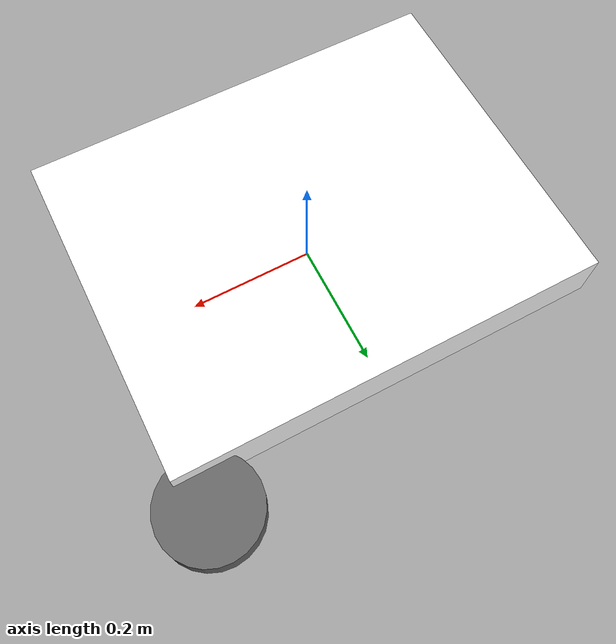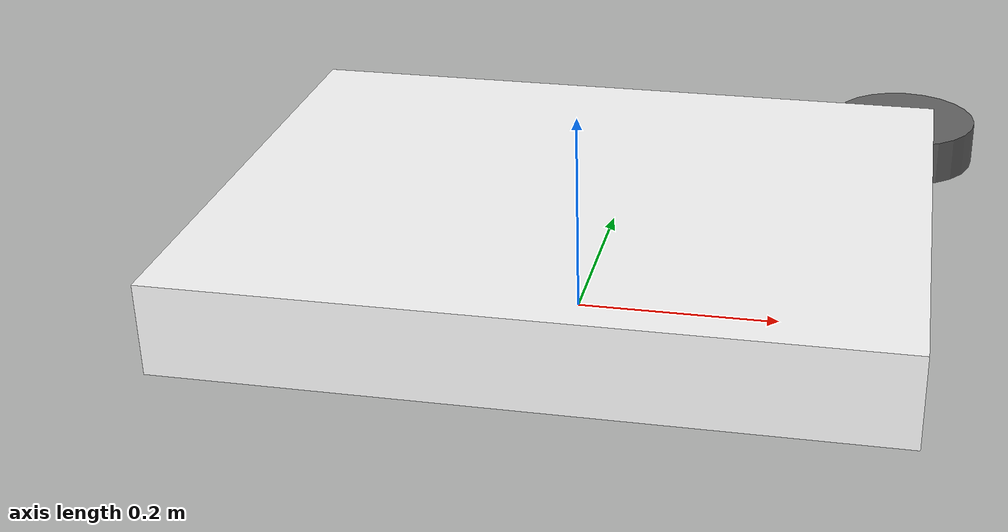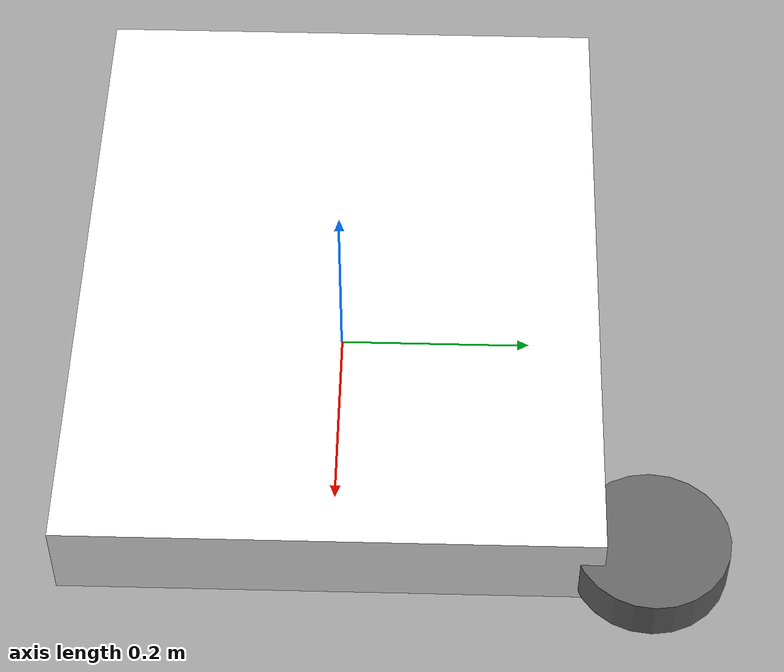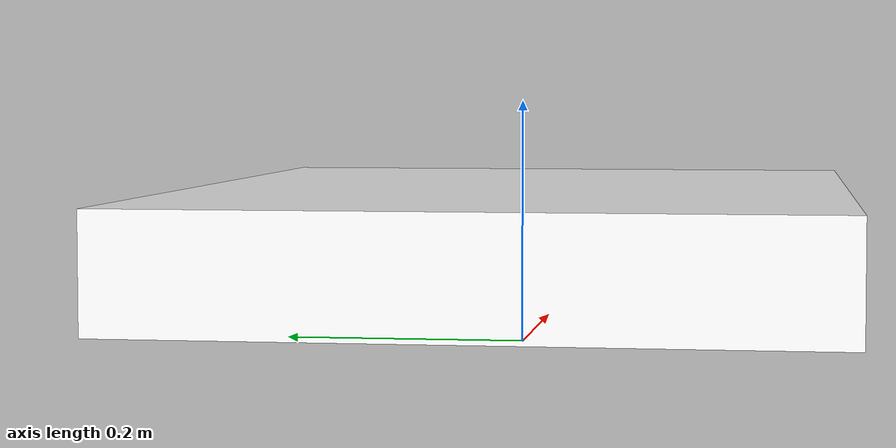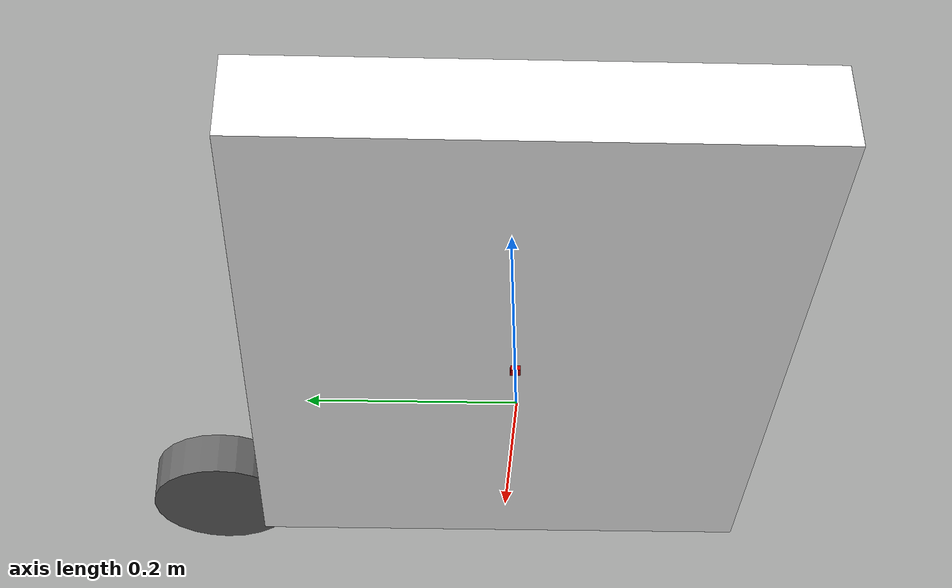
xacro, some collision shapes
<?xml version="1.0"?>
<robot name="robco_4wd_mecanum" xmlns:xacro="http://ros.org/wiki/xacro">

<!-- RobcoMW 4wd mecanum wheel robot description-->
<!-- Created by Stefan Chivarov-->
<!-- IICT-BAS BG - Version 1.0 from Feb. 15th, 2021. -->

<!--########### Properties, materials & calibration #####################################################-->

<!--########### Hardware macros #####################################################-->

  <material name="yellow"><color rgba="0.8 0.8 0.0 1.0" /></material>
  <material name="black"><color rgba="0.15 0.15 0.15 1.0" /></material>
  <material name="dark_grey"><color rgba="0.2 0.2 0.2 1.0" /></material>
  <material name="light_grey"><color rgba="0.4 0.4 0.4 1.0" /></material>

     <material name="Black">
        <color rgba="0.0 0.0 0.0 1.0"/>
    </material>

    <material name="Blue">
        <color rgba="0.0 0.0 0.8 1.0"/>
    </material>

    <material name="Green">
        <color rgba="0.0 0.8 0.0 1.0"/>
    </material>

    <material name="Grey">
        <color rgba="0.2 0.2 0.2 1.0"/>
    </material>

    <material name="DarkGrey">
        <color rgba="0.1 0.1 0.1 1.0"/>
    </material>

    <material name="Orange">
        <color rgba="${255/255} ${108/255} ${10/255} 1.0"/>
    </material>

    <material name="Brown">
        <color rgba="${222/255} ${207/255} ${195/255} 1.0"/>
    </material>

    <material name="Red">
        <color rgba="0.8 0.0 0.0 1.0"/>
    </material>

    <material name="White">
        <color rgba="1.0 1.0 1.0 1.0"/>
    </material>

    <!-- ####### GENERIC CONSTANTS ##### -->

    <!--All units in m-kg-s-radians unit system -->
    <xacro:property name="PI" value="3.1415" />
    <xacro:property name="M_PI" value="3.14159265358979323846264338327950288419716" />
    <xacro:property name="M_PI_2" value="1.570796327" />
    <xacro:property name="ROTATE_90_DEGREES" value="1.570796327" />
    <xacro:property name="ROTATE_180_DEGREES" value="ROTATE_90_DEGREES*2" />
    <xacro:property name="DEG_TO_RAD" value="0.017453293" />
    <xacro:property name="SCALE_in_to_m" value="0.0254"/> <!--inches to meters-->
    <xacro:property name="SCALE_mm_to_m" value="0.001"/> <!--milimeters to meters-->
    <xacro:property name="kgcm_to_nm" value="0.0980665" />
    <xacro:property name="gram_to_kg" value="0.001" />

    <!-- ####### ROBOT ORIGINAL CHASSIS CONSTANTS ##### -->

    <!-- ORIGINAL CHASSIS DIMENSIONS  -->
    <xacro:property name="chassis_lenght" value="${675*SCALE_mm_to_m}" />
    <xacro:property name="chassis_width" value="${530*SCALE_mm_to_m}" />
    <xacro:property name="chassis_height" value="${89*SCALE_mm_to_m}" />
    <xacro:property name="chassis_half_height" value="${chassis_height/2}" />  <!-- 34.5 *SCALE_mm_to_m-->
    <xacro:property name="chassis_weight" value="${19.0-4*0.7}" /> <!-- in kg-->
    <!-- Chassis: distance from the ground to bottom -->
    <xacro:property name="chassis_bottom_z_offset" value="${40.2*SCALE_mm_to_m}" />
    <xacro:property name="chassis_center_to_base_footprint_z_offset" value="${40.2*SCALE_mm_to_m + chassis_half_height}" />

    <!-- EUROPEAN STANDARD 2020 ALUMINIUM EXTRUSION PROFILE DIMENSIONS  -->
    <xacro:property name="profile_2020_width" value="${20*SCALE_mm_to_m}" />
    <xacro:property name="profile_2020_height" value="${20*SCALE_mm_to_m}" />
    <!-- 2020 1 Meter weights 0.55 kg/m --> <!-- CHECK THE WIGHT FOR THE ACTUAL 2020 PROFILE USED -->
    <xacro:property name="profile_2020_weight_per_mm_lenght" value="${0.55/1000}" /> <!-- in kg/mm-->

    <!-- EUROPEAN STANDARD 2060 ALUMINIUM EXTRUSION PROFILE DIMENSIONS  -->
    <xacro:property name="profile_2060_width_horizontal" value="${60*SCALE_mm_to_m}" />
    <xacro:property name="profile_2060_height_horizontal" value="${20*SCALE_mm_to_m}" />
    <xacro:property name="profile_2060_height_horizontal" value="${20*SCALE_mm_to_m}" />
    <xacro:property name="profile_2060_height_vertical" value="${60*SCALE_mm_to_m}" />
  <!-- 2060 1 Meter wights 1.21 kg/m --> <!-- CHECK THE WIGHT FOR THE ACTUAL 2060 PROFILE USED -->
    <xacro:property name="profile_2060_weight_per_mm_lenght" value="${1.21/1000}" /> <!-- in kg/mm-->

    <!-- MOTOR WITH SUPPORT AND ELASTIC CLUTCH COUPLER DIMENSIONS  -->
    <!--  2.16 Kg - approximate with a box: h: 69 w: 60 l: 71+133.5+19 =223.5-->
    <xacro:property name="motor_assy_width" value="${60*SCALE_mm_to_m}" />
    <xacro:property name="motor_assy_height" value="${69*SCALE_mm_to_m}" />
    <xacro:property name="motor_assy_lenght" value="${223.5*SCALE_mm_to_m}" />

    <!-- FLANGE / WHEEL HINGE -->
    <!--  0.06 Kg - approximate with cylinder d56.8 h26.4+5=31.4 -->
    <xacro:property name="wheel_flange_diameter" value="${56.8*SCALE_mm_to_m}" />
    <xacro:property name="wheel_flange_lenght" value="${31.4*SCALE_mm_to_m}" />

    <!-- MECANUM WHEEL  SHAFT-->
    <xacro:property name="shaft_diameter" value="${30.0*SCALE_mm_to_m}" />
    <xacro:property name="shaft_radius" value="${shaft_diameter/2}" />
    <xacro:property name="shaft_lenght" value="${23.0*SCALE_mm_to_m}" />
    <xacro:property name="shaft_half_lenght" value="${shaft_lenght/2}" />
    <xacro:property name="shaft_mass" value="0.06" /> <!-- in kg-->
    <xacro:property name="shaft_x_offset" value="${307.5*SCALE_mm_to_m}" />
    <xacro:property name="shaft_y_offset" value="${265*SCALE_mm_to_m}" />
    <xacro:property name="shaft_z_offset" value="${34.5*SCALE_mm_to_m}" />

    <!-- MECANUM WHEELS -->
    <xacro:property name="wheel_diameter" value="${6*SCALE_in_to_m}" />
    <xacro:property name="wheel_radius" value="${wheel_diameter/2}" />
    <xacro:property name="wheel_width" value="${46*SCALE_mm_to_m}" />
    <xacro:property name="wheel_weight" value="0.820" /> <!-- in kg-->

    <xacro:property name="left_wheel_x_offset" value="${307.5*SCALE_mm_to_m}" />
    <xacro:property name="left_wheel_y_offset" value="${288.645468*SCALE_mm_to_m}" />
    <xacro:property name="left_wheel_z_offset" value="${34.5*SCALE_mm_to_m}" />

<!-- ####### END ROBOT CONSTANTS ##### -->

  <!-- base_footprint is a fictitious link(frame) that is on the ground right below base_link origin, navigation stack depends on this frame -->
  <link name="base_footprint">
  </link>

  <joint name="chassis__visualizer_link_joint" type="fixed">
    <origin xyz="0 0 ${chassis_bottom_z_offset}" rpy="0 0 0" />
    <parent link="base_footprint"/>
    <child link="chassis_joint_visualizer" />
  </joint>

  <link name="chassis_joint_visualizer">
    <visual>
    <!-- The chassis is represented with a box, The origin of the box is in its center,
    that's why we need to add half of the box height to the distance from the bottom of the box here. -->
      <origin xyz="0 0 0" rpy="0 0 0" />
      <geometry>
      <box size="0.01 0.01 0.01"/>
      </geometry>
      <material name="Red" />
    </visual>

    <collision>
      <origin xyz="0 0 0"/>
      <geometry>
        <box size="0.1 0.1 0.1"/>
      </geometry>
    </collision>

    <inertial>
      <!-- Inertia from CAD model, filled box assumption -->
      <origin xyz="-0.01103 0 0.002" rpy="0 0 0"/>
      <mass value="2.844"/>
      <inertia
        ixx="0.018819942" ixy="0" ixz="-0.000101519"
        iyy="0.057333716" iyz="0"
        izz="0.074201740"/>
    </inertial>
  </link>

<!-- The joint to the base_frame (the world) is set at height, equal to the distance form the ground to the bottom of the chassis -->
  <joint name="base_link_joint" type="fixed">
    <origin xyz="0 0 ${chassis_bottom_z_offset}" rpy="0 0 0" />
    <parent link="base_footprint"/>
    <child link="base_link" />
  </joint>

  <link name="base_link">
    <visual>
      <origin xyz="0 0 ${chassis_half_height}" rpy="0 0 0" />
      <geometry>
      <box size="${chassis_lenght} ${chassis_width} ${chassis_height}"/>
      </geometry>
      <material name="White" />

    </visual>

    <collision>
      <origin xyz="0 0 0"/>
      <geometry>
        <box size="${chassis_lenght} ${chassis_width} ${chassis_height}"/>
      </geometry>
    </collision>

    <inertial>
      <!-- Inertia from CAD model, filled box assumption -->
      <origin xyz="-0.01103 0 0.002" rpy="0 0 0"/>
      <mass value="2.844"/>
      <inertia
        ixx="0.018819942" ixy="0" ixz="-0.000101519"
        iyy="0.057333716" iyz="0"
        izz="0.074201740"/>
    </inertial>
  </link>

  <joint name="front_left_wheel_shaft_joint" type="fixed">
    <parent link="base_link"/>
    <child link="front_left_wheel_shaft" />
    <origin xyz="${shaft_x_offset} ${shaft_y_offset} ${shaft_z_offset}" rpy="0 0 0" />
  </joint>

  <link name="front_left_wheel_shaft">
    <visual>
      <origin xyz="0 ${shaft_half_lenght} 0" rpy="${ROTATE_90_DEGREES} 0 0" />
      <geometry>
        <cylinder radius="${shaft_radius}" length="${shaft_lenght}"/>
        <!-- Here insted of showing a cylinder, we can add a mesh file for a nicer visualization in the following way: -->
      </geometry>
      <material name="Red" />
    </visual>

    <collision>
      <origin xyz="0 0 0"/>
      <geometry>
        <cylinder radius="${shaft_radius}" length="${shaft_lenght}"/>
      </geometry>
    </collision>

    <inertial>
      <origin xyz="0 0.01221 0" rpy="0 0 0"/>
      <mass value="0.055"/>
      <inertia
        ixx="0.000021370" ixy="0" ixz="0"
        iyy="0.000009966" iyz="0"
        izz="0.000021370"/>
    </inertial>
  </link>

  <joint name="front_left_wheel_joint" type="continuous">
    <origin xyz="0 ${shaft_lenght} 0" rpy="0 0 0" />
    <parent link="front_left_wheel_shaft"/>
    <child link="front_left_wheel" />
    <axis xyz="0 1 0"/>
  </joint>

  <link name="front_left_wheel">
    <visual>
      <origin xyz="0 ${shaft_lenght} 0" rpy="0 0 0"/>
      <geometry>
        <mesh filename="package://nexus_4wd_mecanum_description/meshes/mecanum_wheel_left.STL" scale="${1*SCALE_mm_to_m} ${0.92*SCALE_mm_to_m} ${1.52*SCALE_mm_to_m}"/>
      </geometry>
      <material name="light_grey"/>
    </visual>
    <collision>
      <origin xyz="0 ${shaft_lenght} 0" rpy="0 0 0"/>
      <geometry>
        <cylinder radius="${wheel_radius}" length="${wheel_width}"/>
      </geometry>
    </collision>
    <inertial>
      <origin xyz="0.0 0.0 0.0" rpy="0 0 0" />
      <mass value="0.3844"/>
      <!-- Inertia based on cylinder -->
      <inertia ixx="0.000324824" ixy="0" ixz="0" iyy="0.000480000" iyz="0" izz="0.000324824"/>
    </inertial>
  </link>

  <!-- Include controller plugin for Gazebo -->
  <xacro:include filename="$(find robco_4wd_mecanum_description)/urdf/robco_4wd_mecanum.gazebo" />

  <!-- Include URM04 ultrasonic range finders -->
  <!-- front sensor -->
  <!-- left sensor -->
  <!-- right sensor -->
  <!-- rear sensor -->

</robot>
